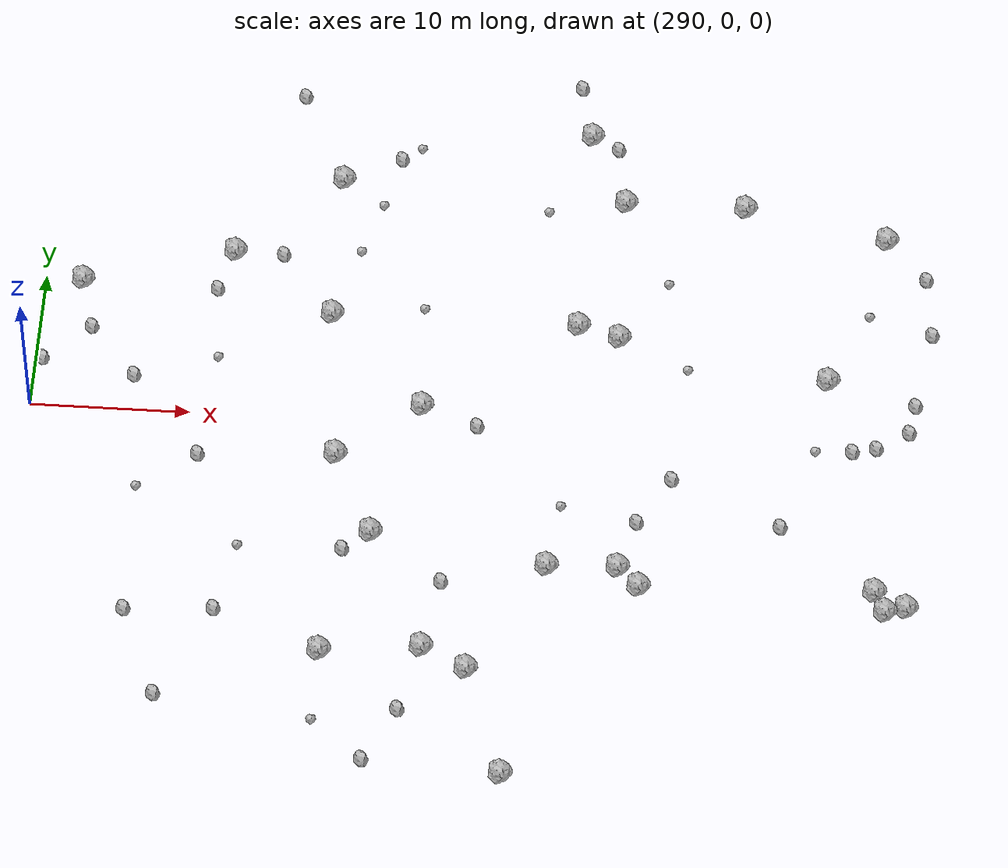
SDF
<sdf version="1.6">
 <world name="default">
  <include><uri>model://sun</uri></include>
  <model name="rock1_8_3">
   <include><uri>model://rock1</uri><pose>308.21411046616066 18.79982313461135 0.5 0 0 0</pose></include>
  </model>
  <model name="rock1_8_4">
   <include><uri>model://rock1</uri><pose>326.32758972528075 18.03628005883032 0.5 0 0 0</pose></include>
  </model>
  <model name="rock1_8_5">
   <include><uri>model://rock1</uri><pose>328.58365358784897 -11.505863879425867 0.5 0 0 0</pose></include>
  </model>
  <model name="rock1_8_6">
   <include><uri>model://rock1</uri><pose>344.9081800579876 -12.087689738807917 0.5 0 0 0</pose></include>
  </model>
  <model name="rock1_8_7">
   <include><uri>model://rock1</uri><pose>326.4444260036232 7.272819186052793 0.5 0 0 0</pose></include>
  </model>
  <model name="rock1_8_8">
   <include><uri>model://rock1</uri><pose>343.62933315140475 -12.43053204508901 0.5 0 0 0</pose></include>
  </model>
  <model name="rock1_8_9">
   <include><uri>model://rock1</uri><pose>315.66568448871186 -16.774440545885643 0.5 0 0 0</pose></include>
  </model>
  <model name="rock1_8_10">
   <include><uri>model://rock1</uri><pose>323.9131245794771 23.330353361631843 0.5 0 0 0</pose></include>
  </model>
  <model name="rock1_8_11">
   <include><uri>model://rock1</uri><pose>327.2438856695867 -10.178898052998452 0.5 0 0 0</pose></include>
  </model>
  <model name="rock1_8_12">
   <include><uri>model://rock1</uri><pose>343.0217325717754 16.073692433107915 0.5 0 0 0</pose></include>
  </model>
  <model name="rock1_8_13">
   <include><uri>model://rock1</uri><pose>322.89569726955426 -10.351027604951405 0.5 0 0 0</pose></include>
  </model>
  <model name="rock1_8_14">
   <include><uri>model://rock1</uri><pose>333.95645095448066 18.059812263979666 0.5 0 0 0</pose></include>
  </model>
  <model name="rock1_8_15">
   <include><uri>model://rock1</uri><pose>321.0301155654157 -25.56255528881987 0.5 0 0 0</pose></include>
  </model>
  <model name="rock1_8_16">
   <include><uri>model://rock1</uri><pose>309.50777521205356 -17.417042891577776 0.5 0 0 0</pose></include>
  </model>
  <model name="rock1_8_17">
   <include><uri>model://rock1</uri><pose>308.295343158714 8.036107080886609 0.5 0 0 0</pose></include>
  </model>
  <model name="rock1_8_18">
   <include><uri>model://rock1</uri><pose>339.63927645361184 4.757187191295337 0.5 0 0 0</pose></include>
  </model>
  <model name="rock1_8_19">
   <include><uri>model://rock1</uri><pose>311.95783449449874 -8.516104030374137 0.5 0 0 0</pose></include>
  </model>
  <model name="rock1_8_20">
   <include><uri>model://rock1</uri><pose>301.7813084481072 12.582128076085716 0.5 0 0 0</pose></include>
  </model>
  <model name="rock1_8_21">
   <include><uri>model://rock1</uri><pose>314.4566912447344 1.2392190583760687 0.5 0 0 0</pose></include>
  </model>
  <model name="rock1_8_22">
   <include><uri>model://rock1</uri><pose>292.3644756104756 9.732483309554723 0.5 0 0 0</pose></include>
  </model>
  <model name="rock1_8_23">
   <include><uri>model://rock1</uri><pose>309.3497277078175 -2.7811041571063484 0.5 0 0 0</pose></include>
  </model>
  <model name="rock1_8_24">
   <include><uri>model://rock1</uri><pose>318.46995951269736 -18.178663086581718 0.5 0 0 0</pose></include>
  </model>
  <model name="rock1_8_25">
   <include><uri>model://rock1</uri><pose>323.8493339853332 8.078233534072034 0.5 0 0 0</pose></include>
  </model>
  <model name="rock1_8_26">
   <include><uri>model://rock1</uri><pose>342.95790756409275 -11.005297563365154 0.5 0 0 0</pose></include>
  </model>
  <model name="rock2_8_0">
   <include><uri>model://rock2</uri><pose>345.5729335324597 13.161946475388753 0.3 0 0 0</pose></include>
  </model>
  <model name="rock2_8_1">
   <include><uri>model://rock2</uri><pose>302.8275144525574 -14.720033217121378 0.3 0 0 0</pose></include>
  </model>
  <model name="rock2_8_2">
   <include><uri>model://rock2</uri><pose>344.77719819354326 1.1567819046150092 0.3 0 0 0</pose></include>
  </model>
  <model name="rock2_8_3">
   <include><uri>model://rock2</uri><pose>345.1189062686816 3.2389404686538086 0.3 0 0 0</pose></include>
  </model>
  <model name="rock2_8_4">
   <include><uri>model://rock2</uri><pose>323.00659986998255 27.343127327818443 0.3 0 0 0</pose></include>
  </model>
  <model name="rock2_8_5">
   <include><uri>model://rock2</uri><pose>297.3552479707532 -15.084658180727237 0.3 0 0 0</pose></include>
  </model>
  <model name="rock2_8_6">
   <include><uri>model://rock2</uri><pose>293.2556734767106 6.138906541534297 0.3 0 0 0</pose></include>
  </model>
  <model name="rock2_8_7">
   <include><uri>model://rock2</uri><pose>311.77893683465044 20.73480319685644 0.3 0 0 0</pose></include>
  </model>
  <model name="rock2_8_8">
   <include><uri>model://rock2</uri><pose>305.1791254052076 25.51058608096389 0.3 0 0 0</pose></include>
  </model>
  <model name="rock2_8_9">
   <include><uri>model://rock2</uri><pose>310.28663271311143 -9.810648735510231 0.3 0 0 0</pose></include>
  </model>
  <model name="rock2_8_10">
   <include><uri>model://rock2</uri><pose>317.9490745527323 -0.04902474246131305 0.3 0 0 0</pose></include>
  </model>
  <model name="rock2_8_11">
   <include><uri>model://rock2</uri><pose>330.2077051388358 -3.3300084719165 0.3 0 0 0</pose></include>
  </model>
  <model name="rock2_8_12">
   <include><uri>model://rock2</uri><pose>296.26766790555604 2.539256380854731 0.3 0 0 0</pose></include>
  </model>
  <model name="rock2_8_13">
   <include><uri>model://rock2</uri><pose>325.6092197966127 22.426168442419744 0.3 0 0 0</pose></include>
  </model>
  <model name="rock2_8_14">
   <include><uri>model://rock2</uri><pose>328.20539634871517 -6.70447789830429 0.3 0 0 0</pose></include>
  </model>
  <model name="rock2_8_15">
   <include><uri>model://rock2</uri><pose>316.5096304999743 -11.862646815253417 0.3 0 0 0</pose></include>
  </model>
  <model name="rock2_8_16">
   <include><uri>model://rock2</uri><pose>312.6307343850694 -25.008699843453385 0.3 0 0 0</pose></include>
  </model>
  <model name="rock2_8_17">
   <include><uri>model://rock2</uri><pose>314.52479983648584 -21.299878789294624 0.3 0 0 0</pose></include>
  </model>
  <model name="rock2_8_18">
   <include><uri>model://rock2</uri><pose>346.0293505819293 8.82709725725195 0.3 0 0 0</pose></include>
  </model>
  <model name="rock2_8_19">
   <include><uri>model://rock2</uri><pose>290.40723411349904 3.51077739804024 0.3 0 0 0</pose></include>
  </model>
  <model name="rock2_8_20">
   <include><uri>model://rock2</uri><pose>341.28900912800185 -0.5095670532938037 0.3 0 0 0</pose></include>
  </model>
  <model name="rock2_8_21">
   <include><uri>model://rock2</uri><pose>300.78636991073074 -3.2646796495893966 0.3 0 0 0</pose></include>
  </model>
  <model name="rock2_8_22">
   <include><uri>model://rock2</uri><pose>300.9009058367778 9.599977580632732 0.3 0 0 0</pose></include>
  </model>
  <model name="rock2_8_23">
   <include><uri>model://rock2</uri><pose>304.840937509221 12.578823661550949 0.3 0 0 0</pose></include>
  </model>
  <model name="rock2_8_24">
   <include><uri>model://rock2</uri><pose>337.03232790795244 -6.489458718040716 0.3 0 0 0</pose></include>
  </model>
  <model name="rock2_8_25">
   <include><uri>model://rock2</uri><pose>299.7572789616315 -21.120507212629654 0.3 0 0 0</pose></include>
  </model>
  <model name="rock2_8_26">
   <include><uri>model://rock2</uri><pose>342.7612555555567 -0.17724608481060855 0.3 0 0 0</pose></include>
  </model>
  <model name="rock3_8_0">
   <include><uri>model://rock3</uri><pose>297.20268034460145 -5.926754568030685 0.2 0 0 0</pose></include>
  </model>
  <model name="rock3_8_1">
   <include><uri>model://rock3</uri><pose>301.4010401855717 4.274796674533697 0.2 0 0 0</pose></include>
  </model>
  <model name="rock3_8_2">
   <include><uri>model://rock3</uri><pose>323.49040744638125 -5.780016137850737 0.2 0 0 0</pose></include>
  </model>
  <model name="rock3_8_3">
   <include><uri>model://rock3</uri><pose>339.0018053740887 -0.6214781223156365 0.2 0 0 0</pose></include>
  </model>
  <model name="rock3_8_4">
   <include><uri>model://rock3</uri><pose>310.8782716862927 16.941658575358026 0.2 0 0 0</pose></include>
  </model>
  <model name="rock3_8_5">
   <include><uri>model://rock3</uri><pose>329.33451083673435 11.790407905473174 0.2 0 0 0</pose></include>
  </model>
  <model name="rock3_8_6">
   <include><uri>model://rock3</uri><pose>309.73371442893273 13.162584660097686 0.2 0 0 0</pose></include>
  </model>
  <model name="rock3_8_7">
   <include><uri>model://rock3</uri><pose>321.4405857741987 17.091971052926283 0.2 0 0 0</pose></include>
  </model>
  <model name="rock3_8_8">
   <include><uri>model://rock3</uri><pose>309.40366660282933 -22.365122788033702 0.2 0 0 0</pose></include>
  </model>
  <model name="rock3_8_9">
   <include><uri>model://rock3</uri><pose>342.06751415160466 10.030441759534419 0.2 0 0 0</pose></include>
  </model>
  <model name="rock3_8_10">
   <include><uri>model://rock3</uri><pose>303.8452615315107 -9.94823604136607 0.2 0 0 0</pose></include>
  </model>
  <model name="rock3_8_11">
   <include><uri>model://rock3</uri><pose>330.8303160012779 5.123045717388521 0.2 0 0 0</pose></include>
  </model>
  <model name="rock3_8_12">
   <include><uri>model://rock3</uri><pose>314.06963122748675 8.847752345700478 0.2 0 0 0</pose></include>
  </model>
  <model name="rock3_8_13">
   <include><uri>model://rock3</uri><pose>313.0033924801671 21.69913756466257 0.2 0 0 0</pose></include>
  </model>
 </world>
</sdf>
